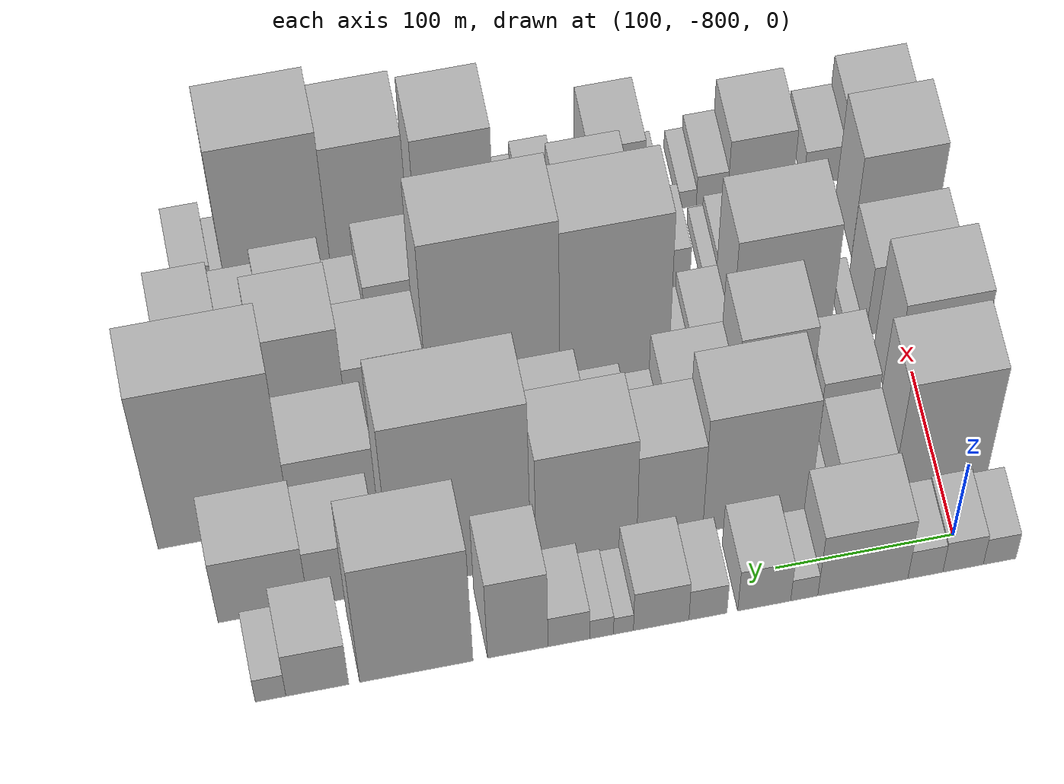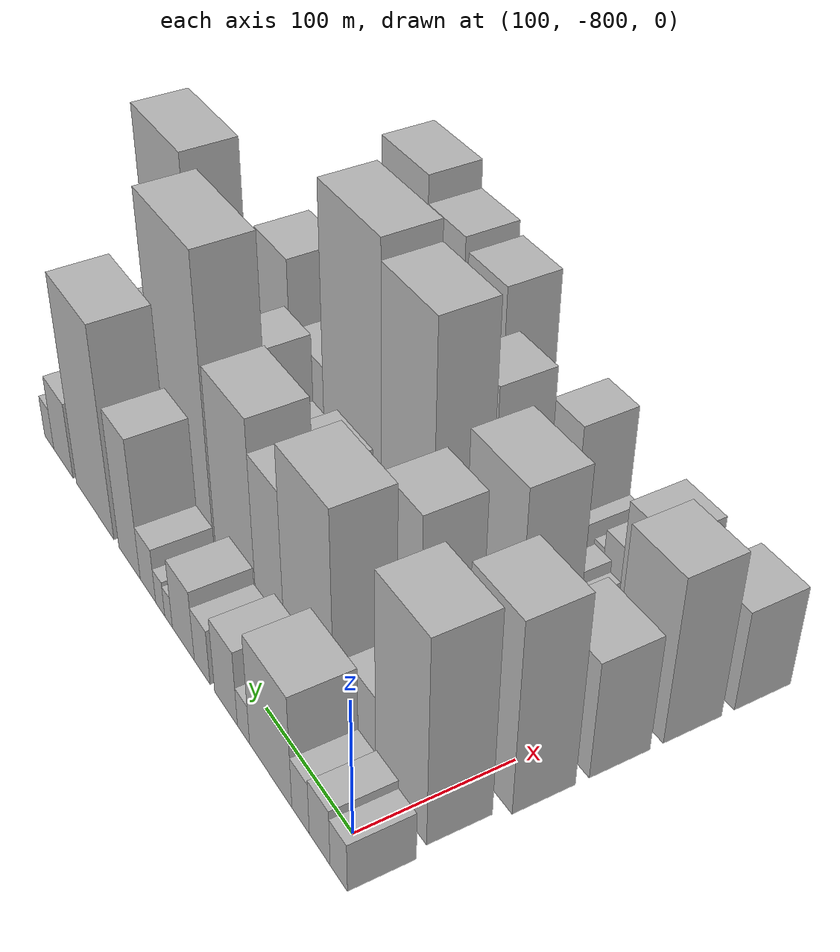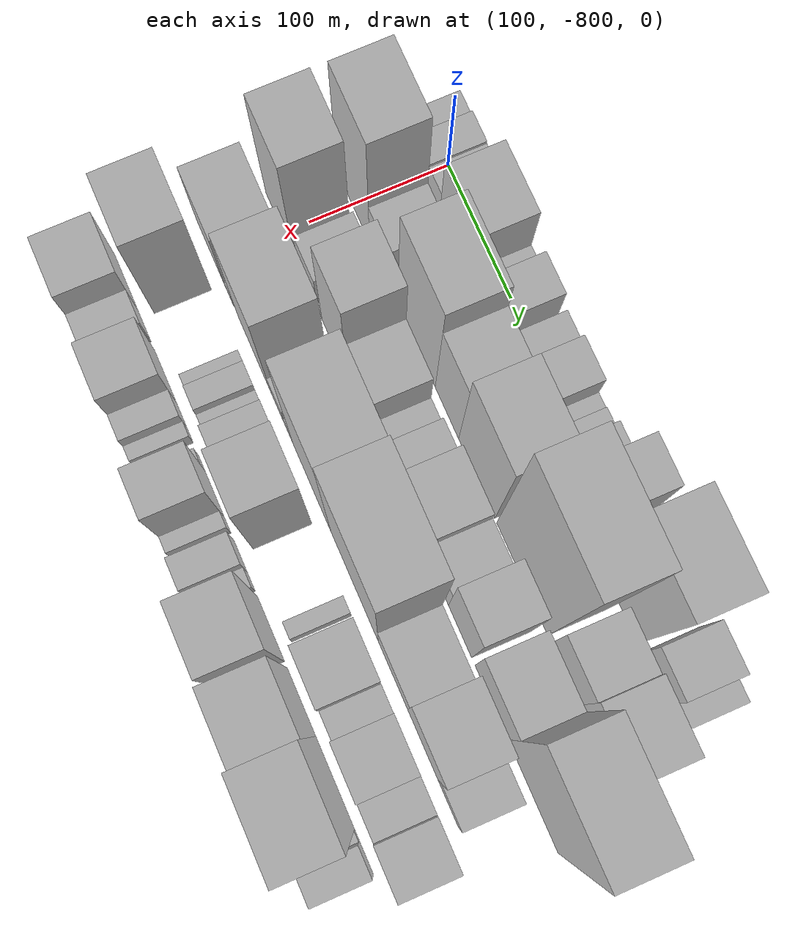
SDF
<sdf version="1.6">
 <world name="default">
  <model name="building_1">
   <static>1</static>
   <pose>100.0000 -820.8194 0 0.000000 0.000000 0.000000</pose>
   <link name="link">
    <pose>0 0 18.00 0 0 0</pose>
    <collision name="collision"><geometry><box><size>40.0000 18.3613 36.0000</size></box></geometry></collision>
    <visual name="visual">
     <cast_shadows>0</cast_shadows>
     <geometry><box><size>40.0000 18.3613 36.0000</size></box></geometry>
     <material>
      <script>
       <uri>model://HANNAS_wall/materials/scripts</uri>
       <uri>model://HANNAS_wall/materials/textures</uri>
       <name>vrc/HANNAS_wall</name>
      </script>
     </material>
    </visual>
   </link>
  </model>
  <model name="building_2">
   <static>1</static>
   <pose>100.0000 -800.2883 0 0.000000 0.000000 0.000000</pose>
   <link name="link">
    <pose>0 0 21.00 0 0 0</pose>
    <collision name="collision"><geometry><box><size>40.0000 22.7009 42.0000</size></box></geometry></collision>
    <visual name="visual">
     <cast_shadows>0</cast_shadows>
     <geometry><box><size>40.0000 22.7009 42.0000</size></box></geometry>
     <material>
      <script>
       <uri>model://HANNAS_wall/materials/scripts</uri>
       <uri>model://HANNAS_wall/materials/textures</uri>
       <name>vrc/HANNAS_wall</name>
      </script>
     </material>
    </visual>
   </link>
  </model>
  <model name="building_3">
   <static>1</static>
   <pose>100.0000 -779.1160 0 0.000000 0.000000 0.000000</pose>
   <link name="link">
    <pose>0 0 19.50 0 0 0</pose>
    <collision name="collision"><geometry><box><size>40.0000 19.6437 39.0000</size></box></geometry></collision>
    <visual name="visual">
     <cast_shadows>0</cast_shadows>
     <geometry><box><size>40.0000 19.6437 39.0000</size></box></geometry>
     <material>
      <script>
       <uri>model://HANNAS_wall/materials/scripts</uri>
       <uri>model://HANNAS_wall/materials/textures</uri>
       <name>vrc/HANNAS_wall</name>
      </script>
     </material>
    </visual>
   </link>
  </model>
  <model name="building_4">
   <static>1</static>
   <pose>100.0000 -744.1241 0 0.000000 0.000000 0.000000</pose>
   <link name="link">
    <pose>0 0 42.00 0 0 0</pose>
    <collision name="collision"><geometry><box><size>40.0000 50.3401 84.0000</size></box></geometry></collision>
    <visual name="visual">
     <cast_shadows>0</cast_shadows>
     <geometry><box><size>40.0000 50.3401 84.0000</size></box></geometry>
     <material>
      <script>
       <uri>model://HANNAS_wall/materials/scripts</uri>
       <uri>model://HANNAS_wall/materials/textures</uri>
       <name>vrc/HANNAS_wall</name>
      </script>
     </material>
    </visual>
   </link>
  </model>
  <model name="building_5">
   <static>1</static>
   <pose>100.0000 -711.3848 0 0.000000 0.000000 0.000000</pose>
   <link name="link">
    <pose>0 0 15.00 0 0 0</pose>
    <collision name="collision"><geometry><box><size>40.0000 15.1385 30.0000</size></box></geometry></collision>
    <visual name="visual">
     <cast_shadows>0</cast_shadows>
     <geometry><box><size>40.0000 15.1385 30.0000</size></box></geometry>
     <material>
      <script>
       <uri>model://HANNAS_wall/materials/scripts</uri>
       <uri>model://HANNAS_wall/materials/textures</uri>
       <name>vrc/HANNAS_wall</name>
      </script>
     </material>
    </visual>
   </link>
  </model>
  <model name="building_6">
   <static>1</static>
   <pose>100.0000 -689.0686 0 0.000000 0.000000 0.000000</pose>
   <link name="link">
    <pose>0 0 28.50 0 0 0</pose>
    <collision name="collision"><geometry><box><size>40.0000 29.4938 57.0000</size></box></geometry></collision>
    <visual name="visual">
     <cast_shadows>0</cast_shadows>
     <geometry><box><size>40.0000 29.4938 57.0000</size></box></geometry>
     <material>
      <script>
       <uri>model://HANNAS_wall/materials/scripts</uri>
       <uri>model://HANNAS_wall/materials/textures</uri>
       <name>vrc/HANNAS_wall</name>
      </script>
     </material>
    </visual>
   </link>
  </model>
  <model name="building_7">
   <static>1</static>
   <pose>100.0000 -657.7556 0 0.000000 0.000000 0.000000</pose>
   <link name="link">
    <pose>0 0 21.00 0 0 0</pose>
    <collision name="collision"><geometry><box><size>40.0000 21.1322 42.0000</size></box></geometry></collision>
    <visual name="visual">
     <cast_shadows>0</cast_shadows>
     <geometry><box><size>40.0000 21.1322 42.0000</size></box></geometry>
     <material>
      <script>
       <uri>model://HANNAS_wall/materials/scripts</uri>
       <uri>model://HANNAS_wall/materials/textures</uri>
       <name>vrc/HANNAS_wall</name>
      </script>
     </material>
    </visual>
   </link>
  </model>
  <model name="building_8">
   <static>1</static>
   <pose>100.0000 -631.7947 0 0.000000 0.000000 0.000000</pose>
   <link name="link">
    <pose>0 0 27.00 0 0 0</pose>
    <collision name="collision"><geometry><box><size>40.0000 30.7895 54.0000</size></box></geometry></collision>
    <visual name="visual">
     <cast_shadows>0</cast_shadows>
     <geometry><box><size>40.0000 30.7895 54.0000</size></box></geometry>
     <material>
      <script>
       <uri>model://HANNAS_wall/materials/scripts</uri>
       <uri>model://HANNAS_wall/materials/textures</uri>
       <name>vrc/HANNAS_wall</name>
      </script>
     </material>
    </visual>
   </link>
  </model>
  <model name="building_9">
   <static>1</static>
   <pose>100.0000 -610.9002 0 0.000000 0.000000 0.000000</pose>
   <link name="link">
    <pose>0 0 12.00 0 0 0</pose>
    <collision name="collision"><geometry><box><size>40.0000 10.9995 24.0000</size></box></geometry></collision>
    <visual name="visual">
     <cast_shadows>0</cast_shadows>
     <geometry><box><size>40.0000 10.9995 24.0000</size></box></geometry>
     <material>
      <script>
       <uri>model://HANNAS_wall/materials/scripts</uri>
       <uri>model://HANNAS_wall/materials/textures</uri>
       <name>vrc/HANNAS_wall</name>
      </script>
     </material>
    </visual>
   </link>
  </model>
  <model name="building_10">
   <static>1</static>
   <pose>100.0000 -598.8212 0 0.000000 0.000000 0.000000</pose>
   <link name="link">
    <pose>0 0 13.50 0 0 0</pose>
    <collision name="collision"><geometry><box><size>40.0000 13.1584 27.0000</size></box></geometry></collision>
    <visual name="visual">
     <cast_shadows>0</cast_shadows>
     <geometry><box><size>40.0000 13.1584 27.0000</size></box></geometry>
     <material>
      <script>
       <uri>model://HANNAS_wall/materials/scripts</uri>
       <uri>model://HANNAS_wall/materials/textures</uri>
       <name>vrc/HANNAS_wall</name>
      </script>
     </material>
    </visual>
   </link>
  </model>
  <model name="building_11">
   <static>1</static>
   <pose>100.0000 -580.7037 0 0.000000 0.000000 0.000000</pose>
   <link name="link">
    <pose>0 0 21.00 0 0 0</pose>
    <collision name="collision"><geometry><box><size>40.0000 23.0767 42.0000</size></box></geometry></collision>
    <visual name="visual">
     <cast_shadows>0</cast_shadows>
     <geometry><box><size>40.0000 23.0767 42.0000</size></box></geometry>
     <material>
      <script>
       <uri>model://HANNAS_wall/materials/scripts</uri>
       <uri>model://HANNAS_wall/materials/textures</uri>
       <name>vrc/HANNAS_wall</name>
      </script>
     </material>
    </visual>
   </link>
  </model>
  <model name="building_12">
   <static>1</static>
   <pose>100.0000 -552.4752 0 0.000000 0.000000 0.000000</pose>
   <link name="link">
    <pose>0 0 54.00 0 0 0</pose>
    <collision name="collision"><geometry><box><size>40.0000 33.3803 108.0000</size></box></geometry></collision>
    <visual name="visual">
     <cast_shadows>0</cast_shadows>
     <geometry><box><size>40.0000 33.3803 108.0000</size></box></geometry>
     <material>
      <script>
       <uri>model://HANNAS_wall/materials/scripts</uri>
       <uri>model://HANNAS_wall/materials/textures</uri>
       <name>vrc/HANNAS_wall</name>
      </script>
     </material>
    </visual>
   </link>
  </model>
  <model name="building_13">
   <static>1</static>
   <pose>100.0000 -496.6385 0 0.000000 0.000000 0.000000</pose>
   <link name="link">
    <pose>0 0 81.00 0 0 0</pose>
    <collision name="collision"><geometry><box><size>40.0000 62.2931 162.0000</size></box></geometry></collision>
    <visual name="visual">
     <cast_shadows>0</cast_shadows>
     <geometry><box><size>40.0000 62.2931 162.0000</size></box></geometry>
     <material>
      <script>
       <uri>model://HANNAS_wall/materials/scripts</uri>
       <uri>model://HANNAS_wall/materials/textures</uri>
       <name>vrc/HANNAS_wall</name>
      </script>
     </material>
    </visual>
   </link>
  </model>
  <model name="building_14">
   <static>1</static>
   <pose>100.0000 -442.3028 0 0.000000 0.000000 0.000000</pose>
   <link name="link">
    <pose>0 0 30.00 0 0 0</pose>
    <collision name="collision"><geometry><box><size>40.0000 34.3782 60.0000</size></box></geometry></collision>
    <visual name="visual">
     <cast_shadows>0</cast_shadows>
     <geometry><box><size>40.0000 34.3782 60.0000</size></box></geometry>
     <material>
      <script>
       <uri>model://HANNAS_wall/materials/scripts</uri>
       <uri>model://HANNAS_wall/materials/textures</uri>
       <name>vrc/HANNAS_wall</name>
      </script>
     </material>
    </visual>
   </link>
  </model>
  <model name="building_15">
   <static>1</static>
   <pose>100.0000 -416.7286 0 0.000000 0.000000 0.000000</pose>
   <link name="link">
    <pose>0 0 16.50 0 0 0</pose>
    <collision name="collision"><geometry><box><size>40.0000 16.7703 33.0000</size></box></geometry></collision>
    <visual name="visual">
     <cast_shadows>0</cast_shadows>
     <geometry><box><size>40.0000 16.7703 33.0000</size></box></geometry>
     <material>
      <script>
       <uri>model://HANNAS_wall/materials/scripts</uri>
       <uri>model://HANNAS_wall/materials/textures</uri>
       <name>vrc/HANNAS_wall</name>
      </script>
     </material>
    </visual>
   </link>
  </model>
  <model name="building_55">
   <static>1</static>
   <pose>149.0000 -798.3148 0 0.000000 0.000000 0.000000</pose>
   <link name="link">
    <pose>0 0 75.00 0 0 0</pose>
    <collision name="collision"><geometry><box><size>40.0000 53.3705 150.0000</size></box></geometry></collision>
    <visual name="visual">
     <cast_shadows>0</cast_shadows>
     <geometry><box><size>40.0000 53.3705 150.0000</size></box></geometry>
     <material>
      <script>
       <uri>model://HANNAS_wall/materials/scripts</uri>
       <uri>model://HANNAS_wall/materials/textures</uri>
       <name>vrc/HANNAS_wall</name>
      </script>
     </material>
    </visual>
   </link>
  </model>
  <model name="building_56">
   <static>1</static>
   <pose>149.0000 -755.5750 0 0.000000 0.000000 0.000000</pose>
   <link name="link">
    <pose>0 0 30.00 0 0 0</pose>
    <collision name="collision"><geometry><box><size>40.0000 32.1091 60.0000</size></box></geometry></collision>
    <visual name="visual">
     <cast_shadows>0</cast_shadows>
     <geometry><box><size>40.0000 32.1091 60.0000</size></box></geometry>
     <material>
      <script>
       <uri>model://HANNAS_wall/materials/scripts</uri>
       <uri>model://HANNAS_wall/materials/textures</uri>
       <name>vrc/HANNAS_wall</name>
      </script>
     </material>
    </visual>
   </link>
  </model>
  <model name="building_57">
   <static>1</static>
   <pose>149.0000 -730.8483 0 0.000000 0.000000 0.000000</pose>
   <link name="link">
    <pose>0 0 12.00 0 0 0</pose>
    <collision name="collision"><geometry><box><size>40.0000 11.3441 24.0000</size></box></geometry></collision>
    <visual name="visual">
     <cast_shadows>0</cast_shadows>
     <geometry><box><size>40.0000 11.3441 24.0000</size></box></geometry>
     <material>
      <script>
       <uri>model://HANNAS_wall/materials/scripts</uri>
       <uri>model://HANNAS_wall/materials/textures</uri>
       <name>vrc/HANNAS_wall</name>
      </script>
     </material>
    </visual>
   </link>
  </model>
  <model name="building_58">
   <static>1</static>
   <pose>149.0000 -695.2119 0 0.000000 0.000000 0.000000</pose>
   <link name="link">
    <pose>0 0 76.50 0 0 0</pose>
    <collision name="collision"><geometry><box><size>40.0000 59.9288 153.0000</size></box></geometry></collision>
    <visual name="visual">
     <cast_shadows>0</cast_shadows>
     <geometry><box><size>40.0000 59.9288 153.0000</size></box></geometry>
     <material>
      <script>
       <uri>model://HANNAS_wall/materials/scripts</uri>
       <uri>model://HANNAS_wall/materials/textures</uri>
       <name>vrc/HANNAS_wall</name>
      </script>
     </material>
    </visual>
   </link>
  </model>
  <model name="building_59">
   <static>1</static>
   <pose>149.0000 -646.7721 0 0.000000 0.000000 0.000000</pose>
   <link name="link">
    <pose>0 0 60.00 0 0 0</pose>
    <collision name="collision"><geometry><box><size>40.0000 36.9507 120.0000</size></box></geometry></collision>
    <visual name="visual">
     <cast_shadows>0</cast_shadows>
     <geometry><box><size>40.0000 36.9507 120.0000</size></box></geometry>
     <material>
      <script>
       <uri>model://HANNAS_wall/materials/scripts</uri>
       <uri>model://HANNAS_wall/materials/textures</uri>
       <name>vrc/HANNAS_wall</name>
      </script>
     </material>
    </visual>
   </link>
  </model>
  <model name="building_60">
   <static>1</static>
   <pose>149.0000 -600.3379 0 0.000000 0.000000 0.000000</pose>
   <link name="link">
    <pose>0 0 72.00 0 0 0</pose>
    <collision name="collision"><geometry><box><size>40.0000 55.9176 144.0000</size></box></geometry></collision>
    <visual name="visual">
     <cast_shadows>0</cast_shadows>
     <geometry><box><size>40.0000 55.9176 144.0000</size></box></geometry>
     <material>
      <script>
       <uri>model://HANNAS_wall/materials/scripts</uri>
       <uri>model://HANNAS_wall/materials/textures</uri>
       <name>vrc/HANNAS_wall</name>
      </script>
     </material>
    </visual>
   </link>
  </model>
  <model name="building_61">
   <static>1</static>
   <pose>149.0000 -530.8320 0 0.000000 0.000000 0.000000</pose>
   <link name="link">
    <pose>0 0 109.50 0 0 0</pose>
    <collision name="collision"><geometry><box><size>40.0000 77.0943 219.0000</size></box></geometry></collision>
    <visual name="visual">
     <cast_shadows>0</cast_shadows>
     <geometry><box><size>40.0000 77.0943 219.0000</size></box></geometry>
     <material>
      <script>
       <uri>model://HANNAS_wall/materials/scripts</uri>
       <uri>model://HANNAS_wall/materials/textures</uri>
       <name>vrc/HANNAS_wall</name>
      </script>
     </material>
    </visual>
   </link>
  </model>
  <model name="building_62">
   <static>1</static>
   <pose>149.0000 -466.6032 0 0.000000 0.000000 0.000000</pose>
   <link name="link">
    <pose>0 0 37.50 0 0 0</pose>
    <collision name="collision"><geometry><box><size>40.0000 41.3634 75.0000</size></box></geometry></collision>
    <visual name="visual">
     <cast_shadows>0</cast_shadows>
     <geometry><box><size>40.0000 41.3634 75.0000</size></box></geometry>
     <material>
      <script>
       <uri>model://HANNAS_wall/materials/scripts</uri>
       <uri>model://HANNAS_wall/materials/textures</uri>
       <name>vrc/HANNAS_wall</name>
      </script>
     </material>
    </visual>
   </link>
  </model>
  <model name="building_63">
   <static>1</static>
   <pose>149.0000 -421.0508 0 0.000000 0.000000 0.000000</pose>
   <link name="link">
    <pose>0 0 42.00 0 0 0</pose>
    <collision name="collision"><geometry><box><size>40.0000 49.7414 84.0000</size></box></geometry></collision>
    <visual name="visual">
     <cast_shadows>0</cast_shadows>
     <geometry><box><size>40.0000 49.7414 84.0000</size></box></geometry>
     <material>
      <script>
       <uri>model://HANNAS_wall/materials/scripts</uri>
       <uri>model://HANNAS_wall/materials/textures</uri>
       <name>vrc/HANNAS_wall</name>
      </script>
     </material>
    </visual>
   </link>
  </model>
  <model name="building_97">
   <static>1</static>
   <pose>198.0000 -806.0535 0 0.000000 0.000000 0.000000</pose>
   <link name="link">
    <pose>0 0 70.50 0 0 0</pose>
    <collision name="collision"><geometry><box><size>40.0000 47.8929 141.0000</size></box></geometry></collision>
    <visual name="visual">
     <cast_shadows>0</cast_shadows>
     <geometry><box><size>40.0000 47.8929 141.0000</size></box></geometry>
     <material>
      <script>
       <uri>model://HANNAS_wall/materials/scripts</uri>
       <uri>model://HANNAS_wall/materials/textures</uri>
       <name>vrc/HANNAS_wall</name>
      </script>
     </material>
    </visual>
   </link>
  </model>
  <model name="building_98">
   <static>1</static>
   <pose>198.0000 -758.1448 0 0.000000 0.000000 0.000000</pose>
   <link name="link">
    <pose>0 0 28.50 0 0 0</pose>
    <collision name="collision"><geometry><box><size>40.0000 31.9245 57.0000</size></box></geometry></collision>
    <visual name="visual">
     <cast_shadows>0</cast_shadows>
     <geometry><box><size>40.0000 31.9245 57.0000</size></box></geometry>
     <material>
      <script>
       <uri>model://HANNAS_wall/materials/scripts</uri>
       <uri>model://HANNAS_wall/materials/textures</uri>
       <name>vrc/HANNAS_wall</name>
      </script>
     </material>
    </visual>
   </link>
  </model>
  <model name="building_99">
   <static>1</static>
   <pose>198.0000 -738.7940 0 0.000000 0.000000 0.000000</pose>
   <link name="link">
    <pose>0 0 7.50 0 0 0</pose>
    <collision name="collision"><geometry><box><size>40.0000 6.7772 15.0000</size></box></geometry></collision>
    <visual name="visual">
     <cast_shadows>0</cast_shadows>
     <geometry><box><size>40.0000 6.7772 15.0000</size></box></geometry>
     <material>
      <script>
       <uri>model://HANNAS_wall/materials/scripts</uri>
       <uri>model://HANNAS_wall/materials/textures</uri>
       <name>vrc/HANNAS_wall</name>
      </script>
     </material>
    </visual>
   </link>
  </model>
  <model name="building_100">
   <static>1</static>
   <pose>198.0000 -714.4344 0 0.000000 0.000000 0.000000</pose>
   <link name="link">
    <pose>0 0 67.50 0 0 0</pose>
    <collision name="collision"><geometry><box><size>40.0000 41.9421 135.0000</size></box></geometry></collision>
    <visual name="visual">
     <cast_shadows>0</cast_shadows>
     <geometry><box><size>40.0000 41.9421 135.0000</size></box></geometry>
     <material>
      <script>
       <uri>model://HANNAS_wall/materials/scripts</uri>
       <uri>model://HANNAS_wall/materials/textures</uri>
       <name>vrc/HANNAS_wall</name>
      </script>
     </material>
    </visual>
   </link>
  </model>
  <model name="building_101">
   <static>1</static>
   <pose>198.0000 -673.4860 0 0.000000 0.000000 0.000000</pose>
   <link name="link">
    <pose>0 0 37.50 0 0 0</pose>
    <collision name="collision"><geometry><box><size>40.0000 39.9545 75.0000</size></box></geometry></collision>
    <visual name="visual">
     <cast_shadows>0</cast_shadows>
     <geometry><box><size>40.0000 39.9545 75.0000</size></box></geometry>
     <material>
      <script>
       <uri>model://HANNAS_wall/materials/scripts</uri>
       <uri>model://HANNAS_wall/materials/textures</uri>
       <name>vrc/HANNAS_wall</name>
      </script>
     </material>
    </visual>
   </link>
  </model>
  <model name="building_102">
   <static>1</static>
   <pose>198.0000 -644.7059 0 0.000000 0.000000 0.000000</pose>
   <link name="link">
    <pose>0 0 15.00 0 0 0</pose>
    <collision name="collision"><geometry><box><size>40.0000 17.6058 30.0000</size></box></geometry></collision>
    <visual name="visual">
     <cast_shadows>0</cast_shadows>
     <geometry><box><size>40.0000 17.6058 30.0000</size></box></geometry>
     <material>
      <script>
       <uri>model://HANNAS_wall/materials/scripts</uri>
       <uri>model://HANNAS_wall/materials/textures</uri>
       <name>vrc/HANNAS_wall</name>
      </script>
     </material>
    </visual>
   </link>
  </model>
  <model name="building_103">
   <static>1</static>
   <pose>198.0000 -623.4108 0 0.000000 0.000000 0.000000</pose>
   <link name="link">
    <pose>0 0 22.50 0 0 0</pose>
    <collision name="collision"><geometry><box><size>40.0000 24.9844 45.0000</size></box></geometry></collision>
    <visual name="visual">
     <cast_shadows>0</cast_shadows>
     <geometry><box><size>40.0000 24.9844 45.0000</size></box></geometry>
     <material>
      <script>
       <uri>model://HANNAS_wall/materials/scripts</uri>
       <uri>model://HANNAS_wall/materials/textures</uri>
       <name>vrc/HANNAS_wall</name>
      </script>
     </material>
    </visual>
   </link>
  </model>
  <model name="building_104">
   <static>1</static>
   <pose>198.0000 -588.6667 0 0.000000 0.000000 0.000000</pose>
   <link name="link">
    <pose>0 0 37.50 0 0 0</pose>
    <collision name="collision"><geometry><box><size>40.0000 44.5038 75.0000</size></box></geometry></collision>
    <visual name="visual">
     <cast_shadows>0</cast_shadows>
     <geometry><box><size>40.0000 44.5038 75.0000</size></box></geometry>
     <material>
      <script>
       <uri>model://HANNAS_wall/materials/scripts</uri>
       <uri>model://HANNAS_wall/materials/textures</uri>
       <name>vrc/HANNAS_wall</name>
      </script>
     </material>
    </visual>
   </link>
  </model>
  <model name="building_105">
   <static>1</static>
   <pose>198.0000 -550.1466 0 0.000000 0.000000 0.000000</pose>
   <link name="link">
    <pose>0 0 30.00 0 0 0</pose>
    <collision name="collision"><geometry><box><size>40.0000 32.5363 60.0000</size></box></geometry></collision>
    <visual name="visual">
     <cast_shadows>0</cast_shadows>
     <geometry><box><size>40.0000 32.5363 60.0000</size></box></geometry>
     <material>
      <script>
       <uri>model://HANNAS_wall/materials/scripts</uri>
       <uri>model://HANNAS_wall/materials/textures</uri>
       <name>vrc/HANNAS_wall</name>
      </script>
     </material>
    </visual>
   </link>
  </model>
  <model name="building_106">
   <static>1</static>
   <pose>198.0000 -516.2254 0 0.000000 0.000000 0.000000</pose>
   <link name="link">
    <pose>0 0 55.50 0 0 0</pose>
    <collision name="collision"><geometry><box><size>40.0000 35.3062 111.0000</size></box></geometry></collision>
    <visual name="visual">
     <cast_shadows>0</cast_shadows>
     <geometry><box><size>40.0000 35.3062 111.0000</size></box></geometry>
     <material>
      <script>
       <uri>model://HANNAS_wall/materials/scripts</uri>
       <uri>model://HANNAS_wall/materials/textures</uri>
       <name>vrc/HANNAS_wall</name>
      </script>
     </material>
    </visual>
   </link>
  </model>
  <model name="building_107">
   <static>1</static>
   <pose>198.0000 -469.0290 0 0.000000 0.000000 0.000000</pose>
   <link name="link">
    <pose>0 0 42.00 0 0 0</pose>
    <collision name="collision"><geometry><box><size>40.0000 49.0865 84.0000</size></box></geometry></collision>
    <visual name="visual">
     <cast_shadows>0</cast_shadows>
     <geometry><box><size>40.0000 49.0865 84.0000</size></box></geometry>
     <material>
      <script>
       <uri>model://HANNAS_wall/materials/scripts</uri>
       <uri>model://HANNAS_wall/materials/textures</uri>
       <name>vrc/HANNAS_wall</name>
      </script>
     </material>
    </visual>
   </link>
  </model>
  <model name="building_108">
   <static>1</static>
   <pose>198.0000 -407.7578 0 0.000000 0.000000 0.000000</pose>
   <link name="link">
    <pose>0 0 102.00 0 0 0</pose>
    <collision name="collision"><geometry><box><size>40.0000 73.4561 204.0000</size></box></geometry></collision>
    <visual name="visual">
     <cast_shadows>0</cast_shadows>
     <geometry><box><size>40.0000 73.4561 204.0000</size></box></geometry>
     <material>
      <script>
       <uri>model://HANNAS_wall/materials/scripts</uri>
       <uri>model://HANNAS_wall/materials/textures</uri>
       <name>vrc/HANNAS_wall</name>
      </script>
     </material>
    </visual>
   </link>
  </model>
  <model name="building_148">
   <static>1</static>
   <pose>247.0000 -804.7533 0 0.000000 0.000000 0.000000</pose>
   <link name="link">
    <pose>0 0 43.50 0 0 0</pose>
    <collision name="collision"><geometry><box><size>40.0000 50.4935 87.0000</size></box></geometry></collision>
    <visual name="visual">
     <cast_shadows>0</cast_shadows>
     <geometry><box><size>40.0000 50.4935 87.0000</size></box></geometry>
     <material>
      <script>
       <uri>model://HANNAS_wall/materials/scripts</uri>
       <uri>model://HANNAS_wall/materials/textures</uri>
       <name>vrc/HANNAS_wall</name>
      </script>
     </material>
    </visual>
   </link>
  </model>
  <model name="building_149">
   <static>1</static>
   <pose>247.0000 -771.5574 0 0.000000 0.000000 0.000000</pose>
   <link name="link">
    <pose>0 0 10.50 0 0 0</pose>
    <collision name="collision"><geometry><box><size>40.0000 9.8982 21.0000</size></box></geometry></collision>
    <visual name="visual">
     <cast_shadows>0</cast_shadows>
     <geometry><box><size>40.0000 9.8982 21.0000</size></box></geometry>
     <material>
      <script>
       <uri>model://HANNAS_wall/materials/scripts</uri>
       <uri>model://HANNAS_wall/materials/textures</uri>
       <name>vrc/HANNAS_wall</name>
      </script>
     </material>
    </visual>
   </link>
  </model>
  <model name="building_150">
   <static>1</static>
   <pose>247.0000 -730.2399 0 0.000000 0.000000 0.000000</pose>
   <link name="link">
    <pose>0 0 75.00 0 0 0</pose>
    <collision name="collision"><geometry><box><size>40.0000 56.7368 150.0000</size></box></geometry></collision>
    <visual name="visual">
     <cast_shadows>0</cast_shadows>
     <geometry><box><size>40.0000 56.7368 150.0000</size></box></geometry>
     <material>
      <script>
       <uri>model://HANNAS_wall/materials/scripts</uri>
       <uri>model://HANNAS_wall/materials/textures</uri>
       <name>vrc/HANNAS_wall</name>
      </script>
     </material>
    </visual>
   </link>
  </model>
  <model name="building_151">
   <static>1</static>
   <pose>247.0000 -690.3157 0 0.000000 0.000000 0.000000</pose>
   <link name="link">
    <pose>0 0 21.00 0 0 0</pose>
    <collision name="collision"><geometry><box><size>40.0000 23.1117 42.0000</size></box></geometry></collision>
    <visual name="visual">
     <cast_shadows>0</cast_shadows>
     <geometry><box><size>40.0000 23.1117 42.0000</size></box></geometry>
     <material>
      <script>
       <uri>model://HANNAS_wall/materials/scripts</uri>
       <uri>model://HANNAS_wall/materials/textures</uri>
       <name>vrc/HANNAS_wall</name>
      </script>
     </material>
    </visual>
   </link>
  </model>
  <model name="building_152">
   <static>1</static>
   <pose>247.0000 -672.7619 0 0.000000 0.000000 0.000000</pose>
   <link name="link">
    <pose>0 0 12.00 0 0 0</pose>
    <collision name="collision"><geometry><box><size>40.0000 11.9960 24.0000</size></box></geometry></collision>
    <visual name="visual">
     <cast_shadows>0</cast_shadows>
     <geometry><box><size>40.0000 11.9960 24.0000</size></box></geometry>
     <material>
      <script>
       <uri>model://HANNAS_wall/materials/scripts</uri>
       <uri>model://HANNAS_wall/materials/textures</uri>
       <name>vrc/HANNAS_wall</name>
      </script>
     </material>
    </visual>
   </link>
  </model>
  <model name="building_153">
   <static>1</static>
   <pose>247.0000 -635.9545 0 0.000000 0.000000 0.000000</pose>
   <link name="link">
    <pose>0 0 100.50 0 0 0</pose>
    <collision name="collision"><geometry><box><size>40.0000 61.6188 201.0000</size></box></geometry></collision>
    <visual name="visual">
     <cast_shadows>0</cast_shadows>
     <geometry><box><size>40.0000 61.6188 201.0000</size></box></geometry>
     <material>
      <script>
       <uri>model://HANNAS_wall/materials/scripts</uri>
       <uri>model://HANNAS_wall/materials/textures</uri>
       <name>vrc/HANNAS_wall</name>
      </script>
     </material>
    </visual>
   </link>
  </model>
  <model name="building_154">
   <static>1</static>
   <pose>247.0000 -567.8681 0 0.000000 0.000000 0.000000</pose>
   <link name="link">
    <pose>0 0 108.00 0 0 0</pose>
    <collision name="collision"><geometry><box><size>40.0000 74.5539 216.0000</size></box></geometry></collision>
    <visual name="visual">
     <cast_shadows>0</cast_shadows>
     <geometry><box><size>40.0000 74.5539 216.0000</size></box></geometry>
     <material>
      <script>
       <uri>model://HANNAS_wall/materials/scripts</uri>
       <uri>model://HANNAS_wall/materials/textures</uri>
       <name>vrc/HANNAS_wall</name>
      </script>
     </material>
    </visual>
   </link>
  </model>
  <model name="building_155">
   <static>1</static>
   <pose>247.0000 -507.9706 0 0.000000 0.000000 0.000000</pose>
   <link name="link">
    <pose>0 0 40.50 0 0 0</pose>
    <collision name="collision"><geometry><box><size>40.0000 45.2412 81.0000</size></box></geometry></collision>
    <visual name="visual">
     <cast_shadows>0</cast_shadows>
     <geometry><box><size>40.0000 45.2412 81.0000</size></box></geometry>
     <material>
      <script>
       <uri>model://HANNAS_wall/materials/scripts</uri>
       <uri>model://HANNAS_wall/materials/textures</uri>
       <name>vrc/HANNAS_wall</name>
      </script>
     </material>
    </visual>
   </link>
  </model>
  <model name="building_156">
   <static>1</static>
   <pose>247.0000 -462.5376 0 0.000000 0.000000 0.000000</pose>
   <link name="link">
    <pose>0 0 67.50 0 0 0</pose>
    <collision name="collision"><geometry><box><size>40.0000 45.6246 135.0000</size></box></geometry></collision>
    <visual name="visual">
     <cast_shadows>0</cast_shadows>
     <geometry><box><size>40.0000 45.6246 135.0000</size></box></geometry>
     <material>
      <script>
       <uri>model://HANNAS_wall/materials/scripts</uri>
       <uri>model://HANNAS_wall/materials/textures</uri>
       <name>vrc/HANNAS_wall</name>
      </script>
     </material>
    </visual>
   </link>
  </model>
  <model name="building_157">
   <static>1</static>
   <pose>247.0000 -424.5837 0 0.000000 0.000000 0.000000</pose>
   <link name="link">
    <pose>0 0 25.50 0 0 0</pose>
    <collision name="collision"><geometry><box><size>40.0000 30.2833 51.0000</size></box></geometry></collision>
    <visual name="visual">
     <cast_shadows>0</cast_shadows>
     <geometry><box><size>40.0000 30.2833 51.0000</size></box></geometry>
     <material>
      <script>
       <uri>model://HANNAS_wall/materials/scripts</uri>
       <uri>model://HANNAS_wall/materials/textures</uri>
       <name>vrc/HANNAS_wall</name>
      </script>
     </material>
    </visual>
   </link>
  </model>
  <model name="building_195">
   <static>1</static>
   <pose>296.0000 -806.3328 0 0.000000 0.000000 0.000000</pose>
   <link name="link">
    <pose>0 0 61.50 0 0 0</pose>
    <collision name="collision"><geometry><box><size>40.0000 47.3344 123.0000</size></box></geometry></collision>
    <visual name="visual">
     <cast_shadows>0</cast_shadows>
     <geometry><box><size>40.0000 47.3344 123.0000</size></box></geometry>
     <material>
      <script>
       <uri>model://HANNAS_wall/materials/scripts</uri>
       <uri>model://HANNAS_wall/materials/textures</uri>
       <name>vrc/HANNAS_wall</name>
      </script>
     </material>
    </visual>
   </link>
  </model>
  <model name="building_196">
   <static>1</static>
   <pose>296.0000 -727.1356 0 0.000000 0.000000 0.000000</pose>
   <link name="link">
    <pose>0 0 10.50 0 0 0</pose>
    <collision name="collision"><geometry><box><size>40.0000 10.3534 21.0000</size></box></geometry></collision>
    <visual name="visual">
     <cast_shadows>0</cast_shadows>
     <geometry><box><size>40.0000 10.3534 21.0000</size></box></geometry>
     <material>
      <script>
       <uri>model://HANNAS_wall/materials/scripts</uri>
       <uri>model://HANNAS_wall/materials/textures</uri>
       <name>vrc/HANNAS_wall</name>
      </script>
     </material>
    </visual>
   </link>
  </model>
  <model name="building_197">
   <static>1</static>
   <pose>296.0000 -713.4287 0 0.000000 0.000000 0.000000</pose>
   <link name="link">
    <pose>0 0 15.00 0 0 0</pose>
    <collision name="collision"><geometry><box><size>40.0000 17.0604 30.0000</size></box></geometry></collision>
    <visual name="visual">
     <cast_shadows>0</cast_shadows>
     <geometry><box><size>40.0000 17.0604 30.0000</size></box></geometry>
     <material>
      <script>
       <uri>model://HANNAS_wall/materials/scripts</uri>
       <uri>model://HANNAS_wall/materials/textures</uri>
       <name>vrc/HANNAS_wall</name>
      </script>
     </material>
    </visual>
   </link>
  </model>
  <model name="building_198">
   <static>1</static>
   <pose>296.0000 -700.5576 0 0.000000 0.000000 0.000000</pose>
   <link name="link">
    <pose>0 0 9.00 0 0 0</pose>
    <collision name="collision"><geometry><box><size>40.0000 8.6819 18.0000</size></box></geometry></collision>
    <visual name="visual">
     <cast_shadows>0</cast_shadows>
     <geometry><box><size>40.0000 8.6819 18.0000</size></box></geometry>
     <material>
      <script>
       <uri>model://HANNAS_wall/materials/scripts</uri>
       <uri>model://HANNAS_wall/materials/textures</uri>
       <name>vrc/HANNAS_wall</name>
      </script>
     </material>
    </visual>
   </link>
  </model>
  <model name="building_199">
   <static>1</static>
   <pose>296.0000 -675.9183 0 0.000000 0.000000 0.000000</pose>
   <link name="link">
    <pose>0 0 25.50 0 0 0</pose>
    <collision name="collision"><geometry><box><size>40.0000 26.5966 51.0000</size></box></geometry></collision>
    <visual name="visual">
     <cast_shadows>0</cast_shadows>
     <geometry><box><size>40.0000 26.5966 51.0000</size></box></geometry>
     <material>
      <script>
       <uri>model://HANNAS_wall/materials/scripts</uri>
       <uri>model://HANNAS_wall/materials/textures</uri>
       <name>vrc/HANNAS_wall</name>
      </script>
     </material>
    </visual>
   </link>
  </model>
  <model name="building_200">
   <static>1</static>
   <pose>296.0000 -635.2861 0 0.000000 0.000000 0.000000</pose>
   <link name="link">
    <pose>0 0 64.50 0 0 0</pose>
    <collision name="collision"><geometry><box><size>40.0000 40.6678 129.0000</size></box></geometry></collision>
    <visual name="visual">
     <cast_shadows>0</cast_shadows>
     <geometry><box><size>40.0000 40.6678 129.0000</size></box></geometry>
     <material>
      <script>
       <uri>model://HANNAS_wall/materials/scripts</uri>
       <uri>model://HANNAS_wall/materials/textures</uri>
       <name>vrc/HANNAS_wall</name>
      </script>
     </material>
    </visual>
   </link>
  </model>
  <model name="building_201">
   <static>1</static>
   <pose>296.0000 -557.5713 0 0.000000 0.000000 0.000000</pose>
   <link name="link">
    <pose>0 0 12.00 0 0 0</pose>
    <collision name="collision"><geometry><box><size>40.0000 11.5873 24.0000</size></box></geometry></collision>
    <visual name="visual">
     <cast_shadows>0</cast_shadows>
     <geometry><box><size>40.0000 11.5873 24.0000</size></box></geometry>
     <material>
      <script>
       <uri>model://HANNAS_wall/materials/scripts</uri>
       <uri>model://HANNAS_wall/materials/textures</uri>
       <name>vrc/HANNAS_wall</name>
      </script>
     </material>
    </visual>
   </link>
  </model>
  <model name="building_202">
   <static>1</static>
   <pose>296.0000 -525.0498 0 0.000000 0.000000 0.000000</pose>
   <link name="link">
    <pose>0 0 37.50 0 0 0</pose>
    <collision name="collision"><geometry><box><size>40.0000 39.4557 75.0000</size></box></geometry></collision>
    <visual name="visual">
     <cast_shadows>0</cast_shadows>
     <geometry><box><size>40.0000 39.4557 75.0000</size></box></geometry>
     <material>
      <script>
       <uri>model://HANNAS_wall/materials/scripts</uri>
       <uri>model://HANNAS_wall/materials/textures</uri>
       <name>vrc/HANNAS_wall</name>
      </script>
     </material>
    </visual>
   </link>
  </model>
  <model name="building_203">
   <static>1</static>
   <pose>296.0000 -495.8493 0 0.000000 0.000000 0.000000</pose>
   <link name="link">
    <pose>0 0 18.00 0 0 0</pose>
    <collision name="collision"><geometry><box><size>40.0000 18.9454 36.0000</size></box></geometry></collision>
    <visual name="visual">
     <cast_shadows>0</cast_shadows>
     <geometry><box><size>40.0000 18.9454 36.0000</size></box></geometry>
     <material>
      <script>
       <uri>model://HANNAS_wall/materials/scripts</uri>
       <uri>model://HANNAS_wall/materials/textures</uri>
       <name>vrc/HANNAS_wall</name>
      </script>
     </material>
    </visual>
   </link>
  </model>
  <model name="building_204">
   <static>1</static>
   <pose>296.0000 -467.4009 0 0.000000 0.000000 0.000000</pose>
   <link name="link">
    <pose>0 0 33.00 0 0 0</pose>
    <collision name="collision"><geometry><box><size>40.0000 37.9512 66.0000</size></box></geometry></collision>
    <visual name="visual">
     <cast_shadows>0</cast_shadows>
     <geometry><box><size>40.0000 37.9512 66.0000</size></box></geometry>
     <material>
      <script>
       <uri>model://HANNAS_wall/materials/scripts</uri>
       <uri>model://HANNAS_wall/materials/textures</uri>
       <name>vrc/HANNAS_wall</name>
      </script>
     </material>
    </visual>
   </link>
  </model>
  <model name="building_205">
   <static>1</static>
   <pose>296.0000 -436.2064 0 0.000000 0.000000 0.000000</pose>
   <link name="link">
    <pose>0 0 24.00 0 0 0</pose>
    <collision name="collision"><geometry><box><size>40.0000 24.4380 48.0000</size></box></geometry></collision>
    <visual name="visual">
     <cast_shadows>0</cast_shadows>
     <geometry><box><size>40.0000 24.4380 48.0000</size></box></geometry>
     <material>
      <script>
       <uri>model://HANNAS_wall/materials/scripts</uri>
       <uri>model://HANNAS_wall/materials/textures</uri>
       <name>vrc/HANNAS_wall</name>
      </script>
     </material>
    </visual>
   </link>
  </model>
  <model name="building_206">
   <static>1</static>
   <pose>296.0000 -406.4669 0 0.000000 0.000000 0.000000</pose>
   <link name="link">
    <pose>0 0 30.00 0 0 0</pose>
    <collision name="collision"><geometry><box><size>40.0000 35.0410 60.0000</size></box></geometry></collision>
    <visual name="visual">
     <cast_shadows>0</cast_shadows>
     <geometry><box><size>40.0000 35.0410 60.0000</size></box></geometry>
     <material>
      <script>
       <uri>model://HANNAS_wall/materials/scripts</uri>
       <uri>model://HANNAS_wall/materials/textures</uri>
       <name>vrc/HANNAS_wall</name>
      </script>
     </material>
    </visual>
   </link>
  </model>
  <model name="building_240">
   <static>1</static>
   <pose>345.0000 -809.5345 0 0.000000 0.000000 0.000000</pose>
   <link name="link">
    <pose>0 0 37.50 0 0 0</pose>
    <collision name="collision"><geometry><box><size>40.0000 40.9310 75.0000</size></box></geometry></collision>
    <visual name="visual">
     <cast_shadows>0</cast_shadows>
     <geometry><box><size>40.0000 40.9310 75.0000</size></box></geometry>
     <material>
      <script>
       <uri>model://HANNAS_wall/materials/scripts</uri>
       <uri>model://HANNAS_wall/materials/textures</uri>
       <name>vrc/HANNAS_wall</name>
      </script>
     </material>
    </visual>
   </link>
  </model>
  <model name="building_241">
   <static>1</static>
   <pose>345.0000 -777.3941 0 0.000000 0.000000 0.000000</pose>
   <link name="link">
    <pose>0 0 21.00 0 0 0</pose>
    <collision name="collision"><geometry><box><size>40.0000 23.3498 42.0000</size></box></geometry></collision>
    <visual name="visual">
     <cast_shadows>0</cast_shadows>
     <geometry><box><size>40.0000 23.3498 42.0000</size></box></geometry>
     <material>
      <script>
       <uri>model://HANNAS_wall/materials/scripts</uri>
       <uri>model://HANNAS_wall/materials/textures</uri>
       <name>vrc/HANNAS_wall</name>
      </script>
     </material>
    </visual>
   </link>
  </model>
  <model name="building_242">
   <static>1</static>
   <pose>345.0000 -740.6537 0 0.000000 0.000000 0.000000</pose>
   <link name="link">
    <pose>0 0 36.00 0 0 0</pose>
    <collision name="collision"><geometry><box><size>40.0000 38.1309 72.0000</size></box></geometry></collision>
    <visual name="visual">
     <cast_shadows>0</cast_shadows>
     <geometry><box><size>40.0000 38.1309 72.0000</size></box></geometry>
     <material>
      <script>
       <uri>model://HANNAS_wall/materials/scripts</uri>
       <uri>model://HANNAS_wall/materials/textures</uri>
       <name>vrc/HANNAS_wall</name>
      </script>
     </material>
    </visual>
   </link>
  </model>
  <model name="building_243">
   <static>1</static>
   <pose>345.0000 -712.5260 0 0.000000 0.000000 0.000000</pose>
   <link name="link">
    <pose>0 0 18.00 0 0 0</pose>
    <collision name="collision"><geometry><box><size>40.0000 18.1247 36.0000</size></box></geometry></collision>
    <visual name="visual">
     <cast_shadows>0</cast_shadows>
     <geometry><box><size>40.0000 18.1247 36.0000</size></box></geometry>
     <material>
      <script>
       <uri>model://HANNAS_wall/materials/scripts</uri>
       <uri>model://HANNAS_wall/materials/textures</uri>
       <name>vrc/HANNAS_wall</name>
      </script>
     </material>
    </visual>
   </link>
  </model>
  <model name="building_244">
   <static>1</static>
   <pose>345.0000 -698.2707 0 0.000000 0.000000 0.000000</pose>
   <link name="link">
    <pose>0 0 10.50 0 0 0</pose>
    <collision name="collision"><geometry><box><size>40.0000 10.3859 21.0000</size></box></geometry></collision>
    <visual name="visual">
     <cast_shadows>0</cast_shadows>
     <geometry><box><size>40.0000 10.3859 21.0000</size></box></geometry>
     <material>
      <script>
       <uri>model://HANNAS_wall/materials/scripts</uri>
       <uri>model://HANNAS_wall/materials/textures</uri>
       <name>vrc/HANNAS_wall</name>
      </script>
     </material>
    </visual>
   </link>
  </model>
  <model name="building_245">
   <static>1</static>
   <pose>345.0000 -678.6069 0 0.000000 0.000000 0.000000</pose>
   <link name="link">
    <pose>0 0 12.00 0 0 0</pose>
    <collision name="collision"><geometry><box><size>40.0000 10.9417 24.0000</size></box></geometry></collision>
    <visual name="visual">
     <cast_shadows>0</cast_shadows>
     <geometry><box><size>40.0000 10.9417 24.0000</size></box></geometry>
     <material>
      <script>
       <uri>model://HANNAS_wall/materials/scripts</uri>
       <uri>model://HANNAS_wall/materials/textures</uri>
       <name>vrc/HANNAS_wall</name>
      </script>
     </material>
    </visual>
   </link>
  </model>
  <model name="building_246">
   <static>1</static>
   <pose>345.0000 -656.9819 0 0.000000 0.000000 0.000000</pose>
   <link name="link">
    <pose>0 0 46.50 0 0 0</pose>
    <collision name="collision"><geometry><box><size>40.0000 32.3084 93.0000</size></box></geometry></collision>
    <visual name="visual">
     <cast_shadows>0</cast_shadows>
     <geometry><box><size>40.0000 32.3084 93.0000</size></box></geometry>
     <material>
      <script>
       <uri>model://HANNAS_wall/materials/scripts</uri>
       <uri>model://HANNAS_wall/materials/textures</uri>
       <name>vrc/HANNAS_wall</name>
      </script>
     </material>
    </visual>
   </link>
  </model>
  <model name="building_247">
   <static>1</static>
   <pose>345.0000 -635.2665 0 0.000000 0.000000 0.000000</pose>
   <link name="link">
    <pose>0 0 13.50 0 0 0</pose>
    <collision name="collision"><geometry><box><size>40.0000 11.1223 27.0000</size></box></geometry></collision>
    <visual name="visual">
     <cast_shadows>0</cast_shadows>
     <geometry><box><size>40.0000 11.1223 27.0000</size></box></geometry>
     <material>
      <script>
       <uri>model://HANNAS_wall/materials/scripts</uri>
       <uri>model://HANNAS_wall/materials/textures</uri>
       <name>vrc/HANNAS_wall</name>
      </script>
     </material>
    </visual>
   </link>
  </model>
  <model name="building_248">
   <static>1</static>
   <pose>345.0000 -613.8930 0 0.000000 0.000000 0.000000</pose>
   <link name="link">
    <pose>0 0 21.00 0 0 0</pose>
    <collision name="collision"><geometry><box><size>40.0000 21.6246 42.0000</size></box></geometry></collision>
    <visual name="visual">
     <cast_shadows>0</cast_shadows>
     <geometry><box><size>40.0000 21.6246 42.0000</size></box></geometry>
     <material>
      <script>
       <uri>model://HANNAS_wall/materials/scripts</uri>
       <uri>model://HANNAS_wall/materials/textures</uri>
       <name>vrc/HANNAS_wall</name>
      </script>
     </material>
    </visual>
   </link>
  </model>
  <model name="building_249">
   <static>1</static>
   <pose>345.0000 -596.4548 0 0.000000 0.000000 0.000000</pose>
   <link name="link">
    <pose>0 0 13.50 0 0 0</pose>
    <collision name="collision"><geometry><box><size>40.0000 13.2519 27.0000</size></box></geometry></collision>
    <visual name="visual">
     <cast_shadows>0</cast_shadows>
     <geometry><box><size>40.0000 13.2519 27.0000</size></box></geometry>
     <material>
      <script>
       <uri>model://HANNAS_wall/materials/scripts</uri>
       <uri>model://HANNAS_wall/materials/textures</uri>
       <name>vrc/HANNAS_wall</name>
      </script>
     </material>
    </visual>
   </link>
  </model>
  <model name="building_250">
   <static>1</static>
   <pose>345.0000 -564.6423 0 0.000000 0.000000 0.000000</pose>
   <link name="link">
    <pose>0 0 70.50 0 0 0</pose>
    <collision name="collision"><geometry><box><size>40.0000 44.3729 141.0000</size></box></geometry></collision>
    <visual name="visual">
     <cast_shadows>0</cast_shadows>
     <geometry><box><size>40.0000 44.3729 141.0000</size></box></geometry>
     <material>
      <script>
       <uri>model://HANNAS_wall/materials/scripts</uri>
       <uri>model://HANNAS_wall/materials/textures</uri>
       <name>vrc/HANNAS_wall</name>
      </script>
     </material>
    </visual>
   </link>
  </model>
  <model name="building_251">
   <static>1</static>
   <pose>345.0000 -515.7700 0 0.000000 0.000000 0.000000</pose>
   <link name="link">
    <pose>0 0 75.00 0 0 0</pose>
    <collision name="collision"><geometry><box><size>40.0000 45.3716 150.0000</size></box></geometry></collision>
    <visual name="visual">
     <cast_shadows>0</cast_shadows>
     <geometry><box><size>40.0000 45.3716 150.0000</size></box></geometry>
     <material>
      <script>
       <uri>model://HANNAS_wall/materials/scripts</uri>
       <uri>model://HANNAS_wall/materials/textures</uri>
       <name>vrc/HANNAS_wall</name>
      </script>
     </material>
    </visual>
   </link>
  </model>
  <model name="building_252">
   <static>1</static>
   <pose>345.0000 -463.0744 0 0.000000 0.000000 0.000000</pose>
   <link name="link">
    <pose>0 0 85.50 0 0 0</pose>
    <collision name="collision"><geometry><box><size>40.0000 60.0196 171.0000</size></box></geometry></collision>
    <visual name="visual">
     <cast_shadows>0</cast_shadows>
     <geometry><box><size>40.0000 60.0196 171.0000</size></box></geometry>
     <material>
      <script>
       <uri>model://HANNAS_wall/materials/scripts</uri>
       <uri>model://HANNAS_wall/materials/textures</uri>
       <name>vrc/HANNAS_wall</name>
      </script>
     </material>
    </visual>
   </link>
  </model>
  <model name="building_253">
   <static>1</static>
   <pose>345.0000 -429.4648 0 0.000000 0.000000 0.000000</pose>
   <link name="link">
    <pose>0 0 7.50 0 0 0</pose>
    <collision name="collision"><geometry><box><size>40.0000 7.1996 15.0000</size></box></geometry></collision>
    <visual name="visual">
     <cast_shadows>0</cast_shadows>
     <geometry><box><size>40.0000 7.1996 15.0000</size></box></geometry>
     <material>
      <script>
       <uri>model://HANNAS_wall/materials/scripts</uri>
       <uri>model://HANNAS_wall/materials/textures</uri>
       <name>vrc/HANNAS_wall</name>
      </script>
     </material>
    </visual>
   </link>
  </model>
  <model name="building_254">
   <static>1</static>
   <pose>345.0000 -415.1422 0 0.000000 0.000000 0.000000</pose>
   <link name="link">
    <pose>0 0 18.00 0 0 0</pose>
    <collision name="collision"><geometry><box><size>40.0000 21.4457 36.0000</size></box></geometry></collision>
    <visual name="visual">
     <cast_shadows>0</cast_shadows>
     <geometry><box><size>40.0000 21.4457 36.0000</size></box></geometry>
     <material>
      <script>
       <uri>model://HANNAS_wall/materials/scripts</uri>
       <uri>model://HANNAS_wall/materials/textures</uri>
       <name>vrc/HANNAS_wall</name>
      </script>
     </material>
    </visual>
   </link>
  </model>
 </world>
</sdf>
